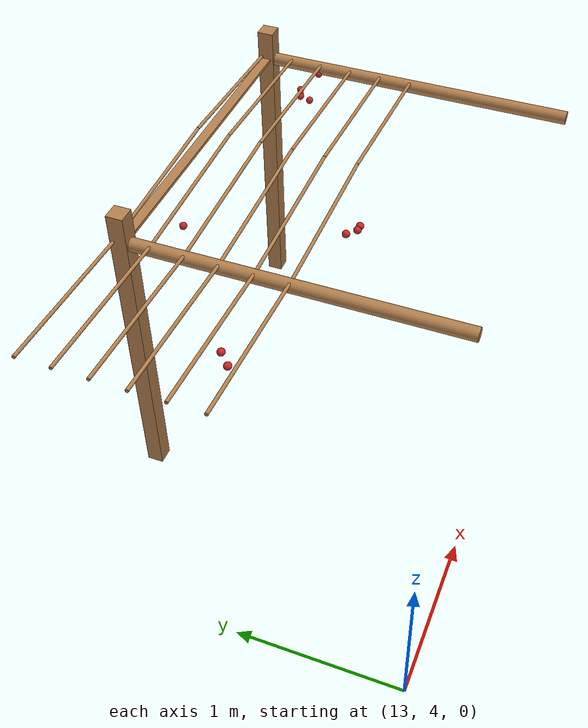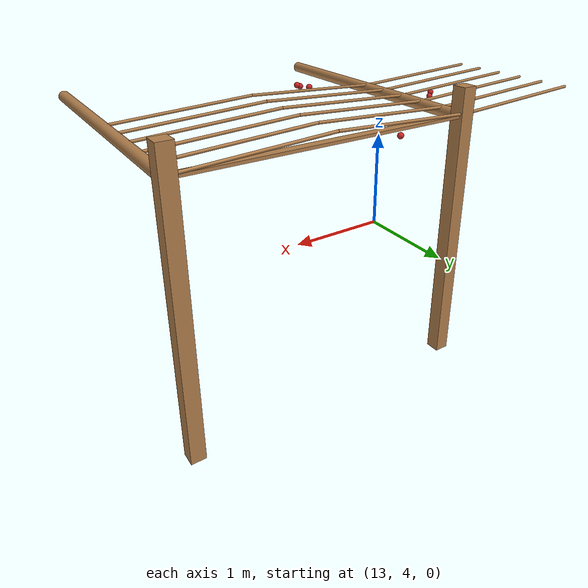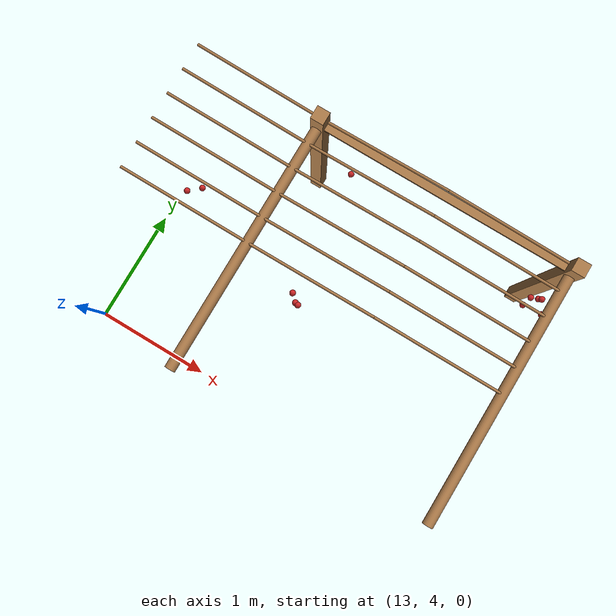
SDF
<sdf version="1.4">
 <model name="pergola">
  <include><name>post_80</name><pose>14.0 6.0 0 0 0 0</pose><uri>model://post</uri></include>
  <include><name>post_91</name><pose>16.0 6.0 0 0 0 0</pose><uri>model://post</uri></include>
  <link name="beam_80">
   <pose>15.0 6.0 1.81 0 0 0</pose>
   <collision name="collision"><geometry><box><size>2.0 0.06 0.02</size></box></geometry></collision>
   <visual name="visual">
    <geometry><box><size>2.0 0.06 0.02</size></box></geometry>
    <material><script><name>Gazebo/Wood</name></script></material>
   </visual>
   <inertial>
    <mass>5</mass>
    <inertia>
     <ixx>0.0016666666666666668</ixx>
     <ixy>0.0</ixy>
     <ixz>0.0</ixz>
     <iyy>1.6681666666666664</iyy>
     <iyz>0.0</iyz>
     <izz>1.6668333333333332</izz>
    </inertia>
   </inertial>
  </link>
  <link name="baseBranch_72">
   <pose>14.0 5.0 1.8 1.5707963267948966 0 0</pose>
   <collision name="collision">
    <geometry><cylinder><radius>0.04</radius><length>1.94</length></cylinder></geometry>
   </collision>
   <visual name="visual">
    <geometry><cylinder><radius>0.04</radius><length>1.94</length></cylinder></geometry>
    <material><script><name>Gazebo/WoodFloor</name></script></material>
   </visual>
   <inertial>
    <mass>10</mass>
    <inertia>
     <ixx>3.140333333333333</ixx>
     <ixy>0.0</ixy>
     <ixz>0.0</ixz>
     <iyy>3.140333333333333</iyy>
     <iyz>0.0</iyz>
     <izz>0.008</izz>
    </inertia>
   </inertial>
  </link>
  <link name="baseBranch_82">
   <pose>16.0 5.0 1.8 1.5707963267948966 0 0</pose>
   <collision name="collision">
    <geometry><cylinder><radius>0.04</radius><length>1.94</length></cylinder></geometry>
   </collision>
   <visual name="visual">
    <geometry><cylinder><radius>0.04</radius><length>1.94</length></cylinder></geometry>
    <material><script><name>Gazebo/WoodFloor</name></script></material>
   </visual>
   <inertial>
    <mass>10</mass>
    <inertia>
     <ixx>3.140333333333333</ixx>
     <ixy>0.0</ixy>
     <ixz>0.0</ixz>
     <iyy>3.140333333333333</iyy>
     <iyz>0.0</iyz>
     <izz>0.008</izz>
    </inertia>
   </inertial>
  </link>
  <link name="vine_1251">
   <pose>13.5 5.03 1.85 0 -1.5208379310729538 0</pose>
   <collision name="collision">
    <geometry><cylinder><radius>0.01</radius><length>1.0012492197250393</length></cylinder></geometry>
   </collision>
   <visual name="visual">
    <geometry><cylinder><radius>0.01</radius><length>1.0012492197250393</length></cylinder></geometry>
    <material><script><name>Gazebo/WoodFloor</name></script></material>
   </visual>
   <inertial>
    <mass>5</mass>
    <inertia>
     <ixx>0.41783333333333345</ixx>
     <ixy>0.0</ixy>
     <ixz>0.0</ixz>
     <iyy>0.41783333333333345</iyy>
     <iyz>0.0</iyz>
     <izz>0.00025</izz>
    </inertia>
   </inertial>
  </link>
  <link name="vine_1253">
   <pose>13.5 5.23 1.85 0 -1.5208379310729538 0</pose>
   <collision name="collision">
    <geometry><cylinder><radius>0.01</radius><length>1.0012492197250393</length></cylinder></geometry>
   </collision>
   <visual name="visual">
    <geometry><cylinder><radius>0.01</radius><length>1.0012492197250393</length></cylinder></geometry>
    <material><script><name>Gazebo/WoodFloor</name></script></material>
   </visual>
   <inertial>
    <mass>5</mass>
    <inertia>
     <ixx>0.41783333333333345</ixx>
     <ixy>0.0</ixy>
     <ixz>0.0</ixz>
     <iyy>0.41783333333333345</iyy>
     <iyz>0.0</iyz>
     <izz>0.00025</izz>
    </inertia>
   </inertial>
  </link>
  <link name="vine_1255">
   <pose>13.5 5.430000000000001 1.85 0 -1.5208379310729538 0</pose>
   <collision name="collision">
    <geometry><cylinder><radius>0.01</radius><length>1.0012492197250393</length></cylinder></geometry>
   </collision>
   <visual name="visual">
    <geometry><cylinder><radius>0.01</radius><length>1.0012492197250393</length></cylinder></geometry>
    <material><script><name>Gazebo/WoodFloor</name></script></material>
   </visual>
   <inertial>
    <mass>5</mass>
    <inertia>
     <ixx>0.41783333333333345</ixx>
     <ixy>0.0</ixy>
     <ixz>0.0</ixz>
     <iyy>0.41783333333333345</iyy>
     <iyz>0.0</iyz>
     <izz>0.00025</izz>
    </inertia>
   </inertial>
  </link>
  <link name="vine_1257">
   <pose>13.5 5.630000000000001 1.85 0 -1.5208379310729538 0</pose>
   <collision name="collision">
    <geometry><cylinder><radius>0.01</radius><length>1.0012492197250393</length></cylinder></geometry>
   </collision>
   <visual name="visual">
    <geometry><cylinder><radius>0.01</radius><length>1.0012492197250393</length></cylinder></geometry>
    <material><script><name>Gazebo/WoodFloor</name></script></material>
   </visual>
   <inertial>
    <mass>5</mass>
    <inertia>
     <ixx>0.41783333333333345</ixx>
     <ixy>0.0</ixy>
     <ixz>0.0</ixz>
     <iyy>0.41783333333333345</iyy>
     <iyz>0.0</iyz>
     <izz>0.00025</izz>
    </inertia>
   </inertial>
  </link>
  <link name="vine_1259">
   <pose>13.5 5.830000000000001 1.85 0 -1.5208379310729538 0</pose>
   <collision name="collision">
    <geometry><cylinder><radius>0.01</radius><length>1.0012492197250393</length></cylinder></geometry>
   </collision>
   <visual name="visual">
    <geometry><cylinder><radius>0.01</radius><length>1.0012492197250393</length></cylinder></geometry>
    <material><script><name>Gazebo/WoodFloor</name></script></material>
   </visual>
   <inertial>
    <mass>5</mass>
    <inertia>
     <ixx>0.41783333333333345</ixx>
     <ixy>0.0</ixy>
     <ixz>0.0</ixz>
     <iyy>0.41783333333333345</iyy>
     <iyz>0.0</iyz>
     <izz>0.00025</izz>
    </inertia>
   </inertial>
  </link>
  <link name="vine_1261">
   <pose>13.5 6.03 1.85 0 -1.5208379310729538 0</pose>
   <collision name="collision">
    <geometry><cylinder><radius>0.01</radius><length>1.0012492197250393</length></cylinder></geometry>
   </collision>
   <visual name="visual">
    <geometry><cylinder><radius>0.01</radius><length>1.0012492197250393</length></cylinder></geometry>
    <material><script><name>Gazebo/WoodFloor</name></script></material>
   </visual>
   <inertial>
    <mass>5</mass>
    <inertia>
     <ixx>0.41783333333333345</ixx>
     <ixy>0.0</ixy>
     <ixz>0.0</ixz>
     <iyy>0.41783333333333345</iyy>
     <iyz>0.0</iyz>
     <izz>0.00025</izz>
    </inertia>
   </inertial>
  </link>
  <link name="vine_1450">
   <pose>14.5 5.03 1.85 0 1.5208379310729538 0</pose>
   <collision name="collision">
    <geometry><cylinder><radius>0.01</radius><length>1.0012492197250393</length></cylinder></geometry>
   </collision>
   <visual name="visual">
    <geometry><cylinder><radius>0.01</radius><length>1.0012492197250393</length></cylinder></geometry>
    <material><script><name>Gazebo/WoodFloor</name></script></material>
   </visual>
   <inertial>
    <mass>5</mass>
    <inertia>
     <ixx>0.41783333333333345</ixx>
     <ixy>0.0</ixy>
     <ixz>0.0</ixz>
     <iyy>0.41783333333333345</iyy>
     <iyz>0.0</iyz>
     <izz>0.00025</izz>
    </inertia>
   </inertial>
  </link>
  <link name="vine_1451">
   <pose>15.5 5.03 1.85 0 -1.5208379310729538 0</pose>
   <collision name="collision">
    <geometry><cylinder><radius>0.01</radius><length>1.0012492197250393</length></cylinder></geometry>
   </collision>
   <visual name="visual">
    <geometry><cylinder><radius>0.01</radius><length>1.0012492197250393</length></cylinder></geometry>
    <material><script><name>Gazebo/WoodFloor</name></script></material>
   </visual>
   <inertial>
    <mass>5</mass>
    <inertia>
     <ixx>0.41783333333333345</ixx>
     <ixy>0.0</ixy>
     <ixz>0.0</ixz>
     <iyy>0.41783333333333345</iyy>
     <iyz>0.0</iyz>
     <izz>0.00025</izz>
    </inertia>
   </inertial>
  </link>
  <link name="vine_1452">
   <pose>14.5 5.23 1.85 0 1.5208379310729538 0</pose>
   <collision name="collision">
    <geometry><cylinder><radius>0.01</radius><length>1.0012492197250393</length></cylinder></geometry>
   </collision>
   <visual name="visual">
    <geometry><cylinder><radius>0.01</radius><length>1.0012492197250393</length></cylinder></geometry>
    <material><script><name>Gazebo/WoodFloor</name></script></material>
   </visual>
   <inertial>
    <mass>5</mass>
    <inertia>
     <ixx>0.41783333333333345</ixx>
     <ixy>0.0</ixy>
     <ixz>0.0</ixz>
     <iyy>0.41783333333333345</iyy>
     <iyz>0.0</iyz>
     <izz>0.00025</izz>
    </inertia>
   </inertial>
  </link>
  <link name="vine_1453">
   <pose>15.5 5.23 1.85 0 -1.5208379310729538 0</pose>
   <collision name="collision">
    <geometry><cylinder><radius>0.01</radius><length>1.0012492197250393</length></cylinder></geometry>
   </collision>
   <visual name="visual">
    <geometry><cylinder><radius>0.01</radius><length>1.0012492197250393</length></cylinder></geometry>
    <material><script><name>Gazebo/WoodFloor</name></script></material>
   </visual>
   <inertial>
    <mass>5</mass>
    <inertia>
     <ixx>0.41783333333333345</ixx>
     <ixy>0.0</ixy>
     <ixz>0.0</ixz>
     <iyy>0.41783333333333345</iyy>
     <iyz>0.0</iyz>
     <izz>0.00025</izz>
    </inertia>
   </inertial>
  </link>
  <link name="vine_1454">
   <pose>14.5 5.430000000000001 1.85 0 1.5208379310729538 0</pose>
   <collision name="collision">
    <geometry><cylinder><radius>0.01</radius><length>1.0012492197250393</length></cylinder></geometry>
   </collision>
   <visual name="visual">
    <geometry><cylinder><radius>0.01</radius><length>1.0012492197250393</length></cylinder></geometry>
    <material><script><name>Gazebo/WoodFloor</name></script></material>
   </visual>
   <inertial>
    <mass>5</mass>
    <inertia>
     <ixx>0.41783333333333345</ixx>
     <ixy>0.0</ixy>
     <ixz>0.0</ixz>
     <iyy>0.41783333333333345</iyy>
     <iyz>0.0</iyz>
     <izz>0.00025</izz>
    </inertia>
   </inertial>
  </link>
  <link name="vine_1455">
   <pose>15.5 5.430000000000001 1.85 0 -1.5208379310729538 0</pose>
   <collision name="collision">
    <geometry><cylinder><radius>0.01</radius><length>1.0012492197250393</length></cylinder></geometry>
   </collision>
   <visual name="visual">
    <geometry><cylinder><radius>0.01</radius><length>1.0012492197250393</length></cylinder></geometry>
    <material><script><name>Gazebo/WoodFloor</name></script></material>
   </visual>
   <inertial>
    <mass>5</mass>
    <inertia>
     <ixx>0.41783333333333345</ixx>
     <ixy>0.0</ixy>
     <ixz>0.0</ixz>
     <iyy>0.41783333333333345</iyy>
     <iyz>0.0</iyz>
     <izz>0.00025</izz>
    </inertia>
   </inertial>
  </link>
  <link name="vine_1456">
   <pose>14.5 5.630000000000001 1.85 0 1.5208379310729538 0</pose>
   <collision name="collision">
    <geometry><cylinder><radius>0.01</radius><length>1.0012492197250393</length></cylinder></geometry>
   </collision>
   <visual name="visual">
    <geometry><cylinder><radius>0.01</radius><length>1.0012492197250393</length></cylinder></geometry>
    <material><script><name>Gazebo/WoodFloor</name></script></material>
   </visual>
   <inertial>
    <mass>5</mass>
    <inertia>
     <ixx>0.41783333333333345</ixx>
     <ixy>0.0</ixy>
     <ixz>0.0</ixz>
     <iyy>0.41783333333333345</iyy>
     <iyz>0.0</iyz>
     <izz>0.00025</izz>
    </inertia>
   </inertial>
  </link>
  <link name="vine_1457">
   <pose>15.5 5.630000000000001 1.85 0 -1.5208379310729538 0</pose>
   <collision name="collision">
    <geometry><cylinder><radius>0.01</radius><length>1.0012492197250393</length></cylinder></geometry>
   </collision>
   <visual name="visual">
    <geometry><cylinder><radius>0.01</radius><length>1.0012492197250393</length></cylinder></geometry>
    <material><script><name>Gazebo/WoodFloor</name></script></material>
   </visual>
   <inertial>
    <mass>5</mass>
    <inertia>
     <ixx>0.41783333333333345</ixx>
     <ixy>0.0</ixy>
     <ixz>0.0</ixz>
     <iyy>0.41783333333333345</iyy>
     <iyz>0.0</iyz>
     <izz>0.00025</izz>
    </inertia>
   </inertial>
  </link>
  <link name="vine_1458">
   <pose>14.5 5.830000000000001 1.85 0 1.5208379310729538 0</pose>
   <collision name="collision">
    <geometry><cylinder><radius>0.01</radius><length>1.0012492197250393</length></cylinder></geometry>
   </collision>
   <visual name="visual">
    <geometry><cylinder><radius>0.01</radius><length>1.0012492197250393</length></cylinder></geometry>
    <material><script><name>Gazebo/WoodFloor</name></script></material>
   </visual>
   <inertial>
    <mass>5</mass>
    <inertia>
     <ixx>0.41783333333333345</ixx>
     <ixy>0.0</ixy>
     <ixz>0.0</ixz>
     <iyy>0.41783333333333345</iyy>
     <iyz>0.0</iyz>
     <izz>0.00025</izz>
    </inertia>
   </inertial>
  </link>
  <link name="vine_1459">
   <pose>15.5 5.830000000000001 1.85 0 -1.5208379310729538 0</pose>
   <collision name="collision">
    <geometry><cylinder><radius>0.01</radius><length>1.0012492197250393</length></cylinder></geometry>
   </collision>
   <visual name="visual">
    <geometry><cylinder><radius>0.01</radius><length>1.0012492197250393</length></cylinder></geometry>
    <material><script><name>Gazebo/WoodFloor</name></script></material>
   </visual>
   <inertial>
    <mass>5</mass>
    <inertia>
     <ixx>0.41783333333333345</ixx>
     <ixy>0.0</ixy>
     <ixz>0.0</ixz>
     <iyy>0.41783333333333345</iyy>
     <iyz>0.0</iyz>
     <izz>0.00025</izz>
    </inertia>
   </inertial>
  </link>
  <link name="vine_1460">
   <pose>14.5 6.03 1.85 0 1.5208379310729538 0</pose>
   <collision name="collision">
    <geometry><cylinder><radius>0.01</radius><length>1.0012492197250393</length></cylinder></geometry>
   </collision>
   <visual name="visual">
    <geometry><cylinder><radius>0.01</radius><length>1.0012492197250393</length></cylinder></geometry>
    <material><script><name>Gazebo/WoodFloor</name></script></material>
   </visual>
   <inertial>
    <mass>5</mass>
    <inertia>
     <ixx>0.41783333333333345</ixx>
     <ixy>0.0</ixy>
     <ixz>0.0</ixz>
     <iyy>0.41783333333333345</iyy>
     <iyz>0.0</iyz>
     <izz>0.00025</izz>
    </inertia>
   </inertial>
  </link>
  <link name="vine_1461">
   <pose>15.5 6.03 1.85 0 -1.5208379310729538 0</pose>
   <collision name="collision">
    <geometry><cylinder><radius>0.01</radius><length>1.0012492197250393</length></cylinder></geometry>
   </collision>
   <visual name="visual">
    <geometry><cylinder><radius>0.01</radius><length>1.0012492197250393</length></cylinder></geometry>
    <material><script><name>Gazebo/WoodFloor</name></script></material>
   </visual>
   <inertial>
    <mass>5</mass>
    <inertia>
     <ixx>0.41783333333333345</ixx>
     <ixy>0.0</ixy>
     <ixz>0.0</ixz>
     <iyy>0.41783333333333345</iyy>
     <iyz>0.0</iyz>
     <izz>0.00025</izz>
    </inertia>
   </inertial>
  </link>
  <link name="fruit_234">
   <pose>14.356553782909257 5.828860512937785 1.6878620194607659 0 0 0</pose>
   <collision name="fruit_collision_234"><geometry><sphere><radius>0.022</radius></sphere></geometry></collision>
   <visual name="visual">
    <geometry><sphere><radius>0.022</radius></sphere></geometry>
    <material><script><name>Gazebo/Red</name></script></material>
   </visual>
   <inertial>
    <mass>0.05</mass>
    <inertia>
     <ixx>9.679999999999999e-06</ixx>
     <ixy>0.0</ixy>
     <ixz>0.0</ixz>
     <iyy>9.679999999999999e-06</iyy>
     <iyz>0.0</iyz>
     <izz>9.679999999999999e-06</izz>
    </inertia>
   </inertial>
   <sensor name="fruit_contact_234" type="contact">
    <contact><collision>fruit_collision_234</collision></contact>
   </sensor>
  </link>
  <link name="fruit_238">
   <pose>15.849047489982134 5.656121209753982 1.6430621561922258 0 0 0</pose>
   <collision name="fruit_collision_238"><geometry><sphere><radius>0.022</radius></sphere></geometry></collision>
   <visual name="visual">
    <geometry><sphere><radius>0.022</radius></sphere></geometry>
    <material><script><name>Gazebo/Red</name></script></material>
   </visual>
   <inertial>
    <mass>0.05</mass>
    <inertia>
     <ixx>9.679999999999999e-06</ixx>
     <ixy>0.0</ixy>
     <ixz>0.0</ixz>
     <iyy>9.679999999999999e-06</iyy>
     <iyz>0.0</iyz>
     <izz>9.679999999999999e-06</izz>
    </inertia>
   </inertial>
   <sensor name="fruit_contact_238" type="contact">
    <contact><collision>fruit_collision_238</collision></contact>
   </sensor>
  </link>
  <link name="fruit_326">
   <pose>13.438981141649847 5.136108277795554 1.716689627929122 0 0 0</pose>
   <collision name="fruit_collision_326"><geometry><sphere><radius>0.022</radius></sphere></geometry></collision>
   <visual name="visual">
    <geometry><sphere><radius>0.022</radius></sphere></geometry>
    <material><script><name>Gazebo/Red</name></script></material>
   </visual>
   <inertial>
    <mass>0.05</mass>
    <inertia>
     <ixx>9.679999999999999e-06</ixx>
     <ixy>0.0</ixy>
     <ixz>0.0</ixz>
     <iyy>9.679999999999999e-06</iyy>
     <iyz>0.0</iyz>
     <izz>9.679999999999999e-06</izz>
    </inertia>
   </inertial>
   <sensor name="fruit_contact_326" type="contact">
    <contact><collision>fruit_collision_326</collision></contact>
   </sensor>
  </link>
  <link name="fruit_338">
   <pose>15.967092647380008 5.637842505150591 1.7732949032175933 0 0 0</pose>
   <collision name="fruit_collision_338"><geometry><sphere><radius>0.022</radius></sphere></geometry></collision>
   <visual name="visual">
    <geometry><sphere><radius>0.022</radius></sphere></geometry>
    <material><script><name>Gazebo/Red</name></script></material>
   </visual>
   <inertial>
    <mass>0.05</mass>
    <inertia>
     <ixx>9.679999999999999e-06</ixx>
     <ixy>0.0</ixy>
     <ixz>0.0</ixz>
     <iyy>9.679999999999999e-06</iyy>
     <iyz>0.0</iyz>
     <izz>9.679999999999999e-06</izz>
    </inertia>
   </inertial>
   <sensor name="fruit_contact_338" type="contact">
    <contact><collision>fruit_collision_338</collision></contact>
   </sensor>
  </link>
  <link name="fruit_641">
   <pose>14.518758788301454 4.840061613871372 1.8503831270899869 0 0 0</pose>
   <collision name="fruit_collision_641"><geometry><sphere><radius>0.022</radius></sphere></geometry></collision>
   <visual name="visual">
    <geometry><sphere><radius>0.022</radius></sphere></geometry>
    <material><script><name>Gazebo/Red</name></script></material>
   </visual>
   <inertial>
    <mass>0.05</mass>
    <inertia>
     <ixx>9.679999999999999e-06</ixx>
     <ixy>0.0</ixy>
     <ixz>0.0</ixz>
     <iyy>9.679999999999999e-06</iyy>
     <iyz>0.0</iyz>
     <izz>9.679999999999999e-06</izz>
    </inertia>
   </inertial>
   <sensor name="fruit_contact_641" type="contact">
    <contact><collision>fruit_collision_641</collision></contact>
   </sensor>
  </link>
  <link name="fruit_677">
   <pose>14.495597970649744 4.845778006674987 1.8400533157053134 0 0 0</pose>
   <collision name="fruit_collision_677"><geometry><sphere><radius>0.022</radius></sphere></geometry></collision>
   <visual name="visual">
    <geometry><sphere><radius>0.022</radius></sphere></geometry>
    <material><script><name>Gazebo/Red</name></script></material>
   </visual>
   <inertial>
    <mass>0.05</mass>
    <inertia>
     <ixx>9.679999999999999e-06</ixx>
     <ixy>0.0</ixy>
     <ixz>0.0</ixz>
     <iyy>9.679999999999999e-06</iyy>
     <iyz>0.0</iyz>
     <izz>9.679999999999999e-06</izz>
    </inertia>
   </inertial>
   <sensor name="fruit_contact_677" type="contact">
    <contact><collision>fruit_collision_677</collision></contact>
   </sensor>
  </link>
  <link name="fruit_697">
   <pose>14.445771398415975 4.893256486995667 1.837452293140373 0 0 0</pose>
   <collision name="fruit_collision_697"><geometry><sphere><radius>0.022</radius></sphere></geometry></collision>
   <visual name="visual">
    <geometry><sphere><radius>0.022</radius></sphere></geometry>
    <material><script><name>Gazebo/Red</name></script></material>
   </visual>
   <inertial>
    <mass>0.05</mass>
    <inertia>
     <ixx>9.679999999999999e-06</ixx>
     <ixy>0.0</ixy>
     <ixz>0.0</ixz>
     <iyy>9.679999999999999e-06</iyy>
     <iyz>0.0</iyz>
     <izz>9.679999999999999e-06</izz>
    </inertia>
   </inertial>
   <sensor name="fruit_contact_697" type="contact">
    <contact><collision>fruit_collision_697</collision></contact>
   </sensor>
  </link>
  <link name="fruit_825">
   <pose>15.944569722210154 5.75807091878102 1.6425000444382425 0 0 0</pose>
   <collision name="fruit_collision_825"><geometry><sphere><radius>0.022</radius></sphere></geometry></collision>
   <visual name="visual">
    <geometry><sphere><radius>0.022</radius></sphere></geometry>
    <material><script><name>Gazebo/Red</name></script></material>
   </visual>
   <inertial>
    <mass>0.05</mass>
    <inertia>
     <ixx>9.679999999999999e-06</ixx>
     <ixy>0.0</ixy>
     <ixz>0.0</ixz>
     <iyy>9.679999999999999e-06</iyy>
     <iyz>0.0</iyz>
     <izz>9.679999999999999e-06</izz>
    </inertia>
   </inertial>
   <sensor name="fruit_contact_825" type="contact">
    <contact><collision>fruit_collision_825</collision></contact>
   </sensor>
  </link>
  <link name="fruit_826">
   <pose>15.872383461303095 5.729052252534663 1.6427533171461146 0 0 0</pose>
   <collision name="fruit_collision_826"><geometry><sphere><radius>0.022</radius></sphere></geometry></collision>
   <visual name="visual">
    <geometry><sphere><radius>0.022</radius></sphere></geometry>
    <material><script><name>Gazebo/Red</name></script></material>
   </visual>
   <inertial>
    <mass>0.05</mass>
    <inertia>
     <ixx>9.679999999999999e-06</ixx>
     <ixy>0.0</ixy>
     <ixz>0.0</ixz>
     <iyy>9.679999999999999e-06</iyy>
     <iyz>0.0</iyz>
     <izz>9.679999999999999e-06</izz>
    </inertia>
   </inertial>
   <sensor name="fruit_contact_826" type="contact">
    <contact><collision>fruit_collision_826</collision></contact>
   </sensor>
  </link>
  <link name="fruit_860">
   <pose>13.51898163106649 5.208477815903953 1.7104723327927405 0 0 0</pose>
   <collision name="fruit_collision_860"><geometry><sphere><radius>0.022</radius></sphere></geometry></collision>
   <visual name="visual">
    <geometry><sphere><radius>0.022</radius></sphere></geometry>
    <material><script><name>Gazebo/Red</name></script></material>
   </visual>
   <inertial>
    <mass>0.05</mass>
    <inertia>
     <ixx>9.679999999999999e-06</ixx>
     <ixy>0.0</ixy>
     <ixz>0.0</ixz>
     <iyy>9.679999999999999e-06</iyy>
     <iyz>0.0</iyz>
     <izz>9.679999999999999e-06</izz>
    </inertia>
   </inertial>
   <sensor name="fruit_contact_860" type="contact">
    <contact><collision>fruit_collision_860</collision></contact>
   </sensor>
  </link>
  <link name="fruit_921">
   <pose>15.92599787399337 5.751728046498218 1.6215979021773 0 0 0</pose>
   <collision name="fruit_collision_921"><geometry><sphere><radius>0.022</radius></sphere></geometry></collision>
   <visual name="visual">
    <geometry><sphere><radius>0.022</radius></sphere></geometry>
    <material><script><name>Gazebo/Red</name></script></material>
   </visual>
   <inertial>
    <mass>0.05</mass>
    <inertia>
     <ixx>9.679999999999999e-06</ixx>
     <ixy>0.0</ixy>
     <ixz>0.0</ixz>
     <iyy>9.679999999999999e-06</iyy>
     <iyz>0.0</iyz>
     <izz>9.679999999999999e-06</izz>
    </inertia>
   </inertial>
   <sensor name="fruit_contact_921" type="contact">
    <contact><collision>fruit_collision_921</collision></contact>
   </sensor>
  </link>
 </model>
</sdf>
